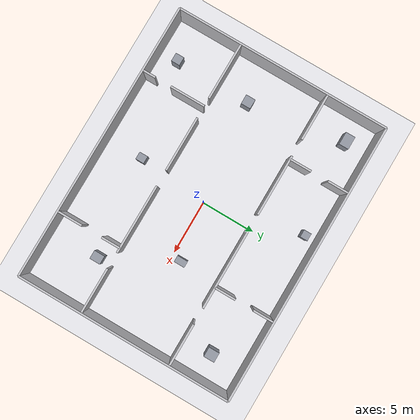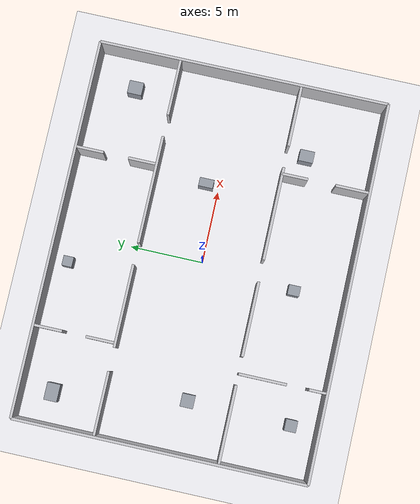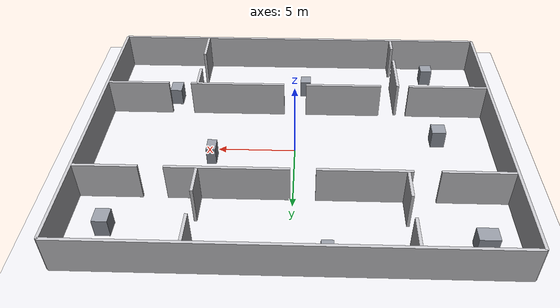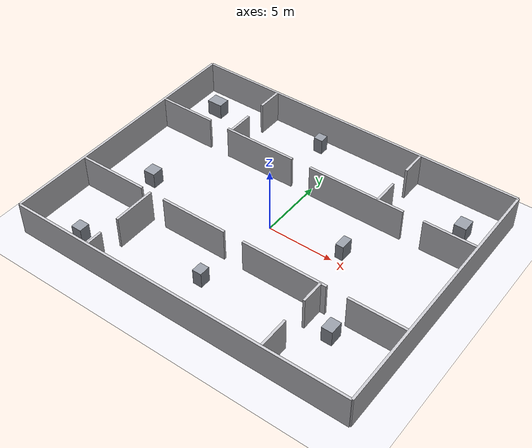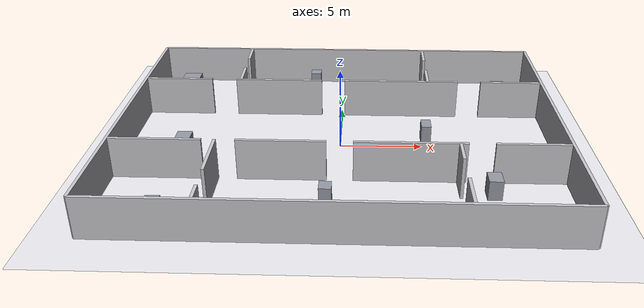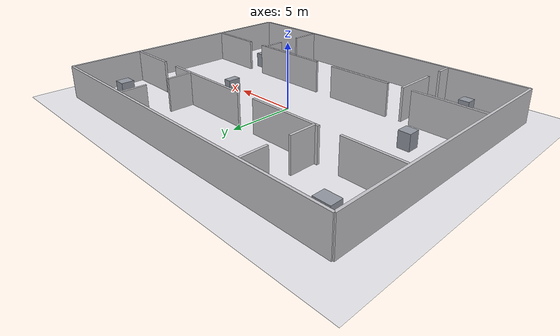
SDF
<?xml version="1.0"?>
<sdf version="1.9"><world name="new_room_world">
<plugin filename="gz-sim-physics-system" name="gz::sim::systems::Physics"/><plugin filename="gz-sim-user-commands-system" name="gz::sim::systems::UserCommands"/><plugin filename="gz-sim-scene-broadcaster-system" name="gz::sim::systems::SceneBroadcaster"/><plugin filename="gz-sim-sensors-system" name="gz::sim::systems::Sensors"><render_engine>ogre2</render_engine></plugin><plugin filename="gz-sim-imu-system" name="gz::sim::systems::Imu"/>
<physics name="new_room_realtime" type="ignored"><max_step_size>0.001</max_step_size><real_time_factor>1</real_time_factor></physics><gravity>0 0 -9.8</gravity><scene><ambient>0.85 0.85 0.87 1</ambient><background>0.68 0.68 0.71 1</background><shadows>false</shadows></scene><light name="sun" type="directional"><cast_shadows>false</cast_shadows><pose>0 0 10 0 0 0</pose><diffuse>0.95 0.95 0.95 1</diffuse><direction>-0.3 0.2 -1</direction></light>
<model name="new_room_ground"><static>true</static><link name="ground_link"><collision name="ground_collision"><geometry><plane><normal>0 0 1</normal><size>40 32</size></plane></geometry></collision><visual name="ground_visual"><geometry><plane><normal>0 0 1</normal><size>40 32</size></plane></geometry><material><ambient>0.92 0.92 0.94 1</ambient><diffuse>0.92 0.92 0.94 1</diffuse></material></visual></link></model>
<model name="mini_hospital_structure"><static>true</static><link name="structure">
<collision name="mx048_c000"><pose>0 10 1.25 0 0 0</pose><geometry><box><size>26 0.18 2.5</size></box></geometry></collision><visual name="mx048_v000"><pose>0 10 1.25 0 0 0</pose><geometry><box><size>26 0.18 2.5</size></box></geometry><material><ambient>0.78 0.78 0.80 1</ambient><diffuse>0.78 0.78 0.80 1</diffuse></material></visual>
<collision name="mx048_c001"><pose>0 -10 1.25 0 0 0</pose><geometry><box><size>26 0.18 2.5</size></box></geometry></collision><visual name="mx048_v001"><pose>0 -10 1.25 0 0 0</pose><geometry><box><size>26 0.18 2.5</size></box></geometry><material><ambient>0.78 0.78 0.80 1</ambient><diffuse>0.78 0.78 0.80 1</diffuse></material></visual>
<collision name="mx048_c002"><pose>-13 0 1.25 0 0 0</pose><geometry><box><size>0.18 20 2.5</size></box></geometry></collision><visual name="mx048_v002"><pose>-13 0 1.25 0 0 0</pose><geometry><box><size>0.18 20 2.5</size></box></geometry><material><ambient>0.78 0.78 0.80 1</ambient><diffuse>0.78 0.78 0.80 1</diffuse></material></visual>
<collision name="mx048_c003"><pose>13 0 1.25 0 0 0</pose><geometry><box><size>0.18 20 2.5</size></box></geometry></collision><visual name="mx048_v003"><pose>13 0 1.25 0 0 0</pose><geometry><box><size>0.18 20 2.5</size></box></geometry><material><ambient>0.78 0.78 0.80 1</ambient><diffuse>0.78 0.78 0.80 1</diffuse></material></visual>
<collision name="mx048_c004"><pose>-10.755 4.4 1.25 0 0 0</pose><geometry><box><size>4.31 0.18 2.5</size></box></geometry></collision><visual name="mx048_v004"><pose>-10.755 4.4 1.25 0 0 0</pose><geometry><box><size>4.31 0.18 2.5</size></box></geometry><material><ambient>0.78 0.78 0.80 1</ambient><diffuse>0.78 0.78 0.80 1</diffuse></material></visual>
<collision name="mx048_c005"><pose>-4.175 4.4 1.25 0 0 0</pose><geometry><box><size>5.65 0.18 2.5</size></box></geometry></collision><visual name="mx048_v005"><pose>-4.175 4.4 1.25 0 0 0</pose><geometry><box><size>5.65 0.18 2.5</size></box></geometry><material><ambient>0.78 0.78 0.80 1</ambient><diffuse>0.78 0.78 0.80 1</diffuse></material></visual>
<collision name="mx048_c006"><pose>3.85 4.4 1.25 0 0 0</pose><geometry><box><size>7.4 0.18 2.5</size></box></geometry></collision><visual name="mx048_v006"><pose>3.85 4.4 1.25 0 0 0</pose><geometry><box><size>7.4 0.18 2.5</size></box></geometry><material><ambient>0.78 0.78 0.80 1</ambient><diffuse>0.78 0.78 0.80 1</diffuse></material></visual>
<collision name="mx048_c007"><pose>10.98 4.4 1.25 0 0 0</pose><geometry><box><size>3.86 0.18 2.5</size></box></geometry></collision><visual name="mx048_v007"><pose>10.98 4.4 1.25 0 0 0</pose><geometry><box><size>3.86 0.18 2.5</size></box></geometry><material><ambient>0.78 0.78 0.80 1</ambient><diffuse>0.78 0.78 0.80 1</diffuse></material></visual>
<collision name="mx048_c008"><pose>-10.28 -4 1.25 0 0 0</pose><geometry><box><size>5.26 0.18 2.5</size></box></geometry></collision><visual name="mx048_v008"><pose>-10.28 -4 1.25 0 0 0</pose><geometry><box><size>5.26 0.18 2.5</size></box></geometry><material><ambient>0.78 0.78 0.80 1</ambient><diffuse>0.78 0.78 0.80 1</diffuse></material></visual>
<collision name="mx048_c009"><pose>-3.2 -4 1.25 0 0 0</pose><geometry><box><size>5.1 0.18 2.5</size></box></geometry></collision><visual name="mx048_v009"><pose>-3.2 -4 1.25 0 0 0</pose><geometry><box><size>5.1 0.18 2.5</size></box></geometry><material><ambient>0.78 0.78 0.80 1</ambient><diffuse>0.78 0.78 0.80 1</diffuse></material></visual>
<collision name="mx048_c010"><pose>4.05 -4 1.25 0 0 0</pose><geometry><box><size>6.4 0.18 2.5</size></box></geometry></collision><visual name="mx048_v010"><pose>4.05 -4 1.25 0 0 0</pose><geometry><box><size>6.4 0.18 2.5</size></box></geometry><material><ambient>0.78 0.78 0.80 1</ambient><diffuse>0.78 0.78 0.80 1</diffuse></material></visual>
<collision name="mx048_c011"><pose>10.83 -4 1.25 0 0 0</pose><geometry><box><size>4.16 0.18 2.5</size></box></geometry></collision><visual name="mx048_v011"><pose>10.83 -4 1.25 0 0 0</pose><geometry><box><size>4.16 0.18 2.5</size></box></geometry><material><ambient>0.78 0.78 0.80 1</ambient><diffuse>0.78 0.78 0.80 1</diffuse></material></visual>
<collision name="mx048_c012"><pose>-6.7 5.4 1.25 0 0 0</pose><geometry><box><size>0.18 2 2.5</size></box></geometry></collision><visual name="mx048_v012"><pose>-6.7 5.4 1.25 0 0 0</pose><geometry><box><size>0.18 2 2.5</size></box></geometry><material><ambient>0.78 0.78 0.80 1</ambient><diffuse>0.78 0.78 0.80 1</diffuse></material></visual>
<collision name="mx048_c013"><pose>-6.7 8.955 1.25 0 0 0</pose><geometry><box><size>0.18 1.91 2.5</size></box></geometry></collision><visual name="mx048_v013"><pose>-6.7 8.955 1.25 0 0 0</pose><geometry><box><size>0.18 1.91 2.5</size></box></geometry><material><ambient>0.78 0.78 0.80 1</ambient><diffuse>0.78 0.78 0.80 1</diffuse></material></visual>
<collision name="mx048_c014"><pose>5.6 5.375 1.25 0 0 0</pose><geometry><box><size>0.18 1.95 2.5</size></box></geometry></collision><visual name="mx048_v014"><pose>5.6 5.375 1.25 0 0 0</pose><geometry><box><size>0.18 1.95 2.5</size></box></geometry><material><ambient>0.78 0.78 0.80 1</ambient><diffuse>0.78 0.78 0.80 1</diffuse></material></visual>
<collision name="mx048_c015"><pose>5.6 8.98 1.25 0 0 0</pose><geometry><box><size>0.18 1.86 2.5</size></box></geometry></collision><visual name="mx048_v015"><pose>5.6 8.98 1.25 0 0 0</pose><geometry><box><size>0.18 1.86 2.5</size></box></geometry><material><ambient>0.78 0.78 0.80 1</ambient><diffuse>0.78 0.78 0.80 1</diffuse></material></visual>
<collision name="mx048_c016"><pose>-6.9 -9.33 1.25 0 0 0</pose><geometry><box><size>0.18 1.16 2.5</size></box></geometry></collision><visual name="mx048_v016"><pose>-6.9 -9.33 1.25 0 0 0</pose><geometry><box><size>0.18 1.16 2.5</size></box></geometry><material><ambient>0.78 0.78 0.80 1</ambient><diffuse>0.78 0.78 0.80 1</diffuse></material></visual>
<collision name="mx048_c017"><pose>-6.9 -5.625 1.25 0 0 0</pose><geometry><box><size>0.18 3.25 2.5</size></box></geometry></collision><visual name="mx048_v017"><pose>-6.9 -5.625 1.25 0 0 0</pose><geometry><box><size>0.18 3.25 2.5</size></box></geometry><material><ambient>0.78 0.78 0.80 1</ambient><diffuse>0.78 0.78 0.80 1</diffuse></material></visual>
<collision name="mx048_c018"><pose>6.8 -8.78 1.25 0 0 0</pose><geometry><box><size>0.18 2.26 2.5</size></box></geometry></collision><visual name="mx048_v018"><pose>6.8 -8.78 1.25 0 0 0</pose><geometry><box><size>0.18 2.26 2.5</size></box></geometry><material><ambient>0.78 0.78 0.80 1</ambient><diffuse>0.78 0.78 0.80 1</diffuse></material></visual>
<collision name="mx048_c019"><pose>6.8 -4.875 1.25 0 0 0</pose><geometry><box><size>0.18 1.75 2.5</size></box></geometry></collision><visual name="mx048_v019"><pose>6.8 -4.875 1.25 0 0 0</pose><geometry><box><size>0.18 1.75 2.5</size></box></geometry><material><ambient>0.78 0.78 0.80 1</ambient><diffuse>0.78 0.78 0.80 1</diffuse></material></visual>
<collision name="mx048_c020"><pose>-10.8 7.9 0.6 0 0 0</pose><geometry><box><size>1.2 0.9 1.2</size></box></geometry></collision><visual name="mx048_v020"><pose>-10.8 7.9 0.6 0 0 0</pose><geometry><box><size>1.2 0.9 1.2</size></box></geometry><material><ambient>0.58 0.60 0.64 1</ambient><diffuse>0.58 0.60 0.64 1</diffuse></material></visual>
<collision name="mx048_c021"><pose>-2 8.9 0.6 0 0 0</pose><geometry><box><size>0.7 0.7 1.2</size></box></geometry></collision><visual name="mx048_v021"><pose>-2 8.9 0.6 0 0 0</pose><geometry><box><size>0.7 0.7 1.2</size></box></geometry><material><ambient>0.58 0.60 0.64 1</ambient><diffuse>0.58 0.60 0.64 1</diffuse></material></visual>
<collision name="mx048_c022"><pose>10.7 7.1 0.6 0 0 0</pose><geometry><box><size>0.9 1 1.2</size></box></geometry></collision><visual name="mx048_v022"><pose>10.7 7.1 0.6 0 0 0</pose><geometry><box><size>0.9 1 1.2</size></box></geometry><material><ambient>0.58 0.60 0.64 1</ambient><diffuse>0.58 0.60 0.64 1</diffuse></material></visual>
<collision name="mx048_c023"><pose>-9.5 -8.2 0.6 0 0 0</pose><geometry><box><size>0.8 0.8 1.2</size></box></geometry></collision><visual name="mx048_v023"><pose>-9.5 -8.2 0.6 0 0 0</pose><geometry><box><size>0.8 0.8 1.2</size></box></geometry><material><ambient>0.58 0.60 0.64 1</ambient><diffuse>0.58 0.60 0.64 1</diffuse></material></visual>
<collision name="mx048_c024"><pose>-0.6 -6.5 0.6 0 0 0</pose><geometry><box><size>0.7 0.8 1.2</size></box></geometry></collision><visual name="mx048_v024"><pose>-0.6 -6.5 0.6 0 0 0</pose><geometry><box><size>0.7 0.8 1.2</size></box></geometry><material><ambient>0.58 0.60 0.64 1</ambient><diffuse>0.58 0.60 0.64 1</diffuse></material></visual>
<collision name="mx048_c025"><pose>8.6 -5.4 0.6 0 0 0</pose><geometry><box><size>0.8 1 1.2</size></box></geometry></collision><visual name="mx048_v025"><pose>8.6 -5.4 0.6 0 0 0</pose><geometry><box><size>0.8 1 1.2</size></box></geometry><material><ambient>0.58 0.60 0.64 1</ambient><diffuse>0.58 0.60 0.64 1</diffuse></material></visual>
<collision name="mx048_c026"><pose>-9.4 -1.1 0.6 0 0 0</pose><geometry><box><size>0.9 0.9 1.2</size></box></geometry></collision><visual name="mx048_v026"><pose>-9.4 -1.1 0.6 0 0 0</pose><geometry><box><size>0.9 0.9 1.2</size></box></geometry><material><ambient>0.58 0.60 0.64 1</ambient><diffuse>0.58 0.60 0.64 1</diffuse></material></visual>
<collision name="mx048_c027"><pose>5.3 0.9 0.6 0 0 0</pose><geometry><box><size>0.6 1 1.2</size></box></geometry></collision><visual name="mx048_v027"><pose>5.3 0.9 0.6 0 0 0</pose><geometry><box><size>0.6 1 1.2</size></box></geometry><material><ambient>0.58 0.60 0.64 1</ambient><diffuse>0.58 0.60 0.64 1</diffuse></material></visual>
</link></model></world></sdf>
